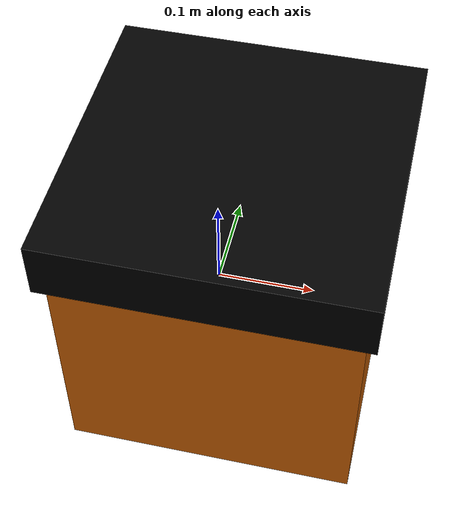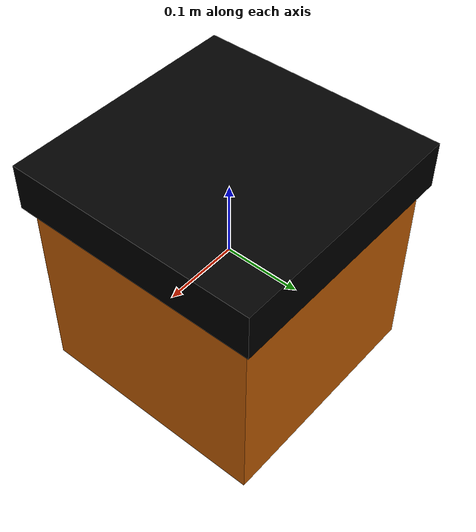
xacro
<?xml version="1.0"?>
<robot  name="box" xmlns:xacro="http://ros.org/wiki/xacro">

  <xacro:macro name="body_color">
    <visual>
      <material>
        <ambient>0.909803921568627 0.443137254901961 0.0313725490196078 1</ambient>
        <diffuse>0.909803921568627 0.443137254901961 0.0313725490196078 1</diffuse>
        <specular>0.1 0.1 0.1 1</specular>
        <emissive>0 0 0 0</emissive>
      </material>
    </visual>
  </xacro:macro>
  <xacro:macro name="lid_color">
    <visual>
      <material>
        <ambient>0 0 0 1</ambient>
        <diffuse>0 0 0  1</diffuse>
        <specular>0.1 0.1 0.1 1</specular>
        <emissive>0 0 0 0</emissive>
      </material>
    </visual>
  </xacro:macro>

  <link
    name="base_link">
    <inertial>
      <origin
        xyz="0.0182912425811423 0.00816214167781482 -0.0151972780093956"
        rpy="0 0 0" />
      <mass
        value="0.5" />
      <inertia
        ixx="0.405"
        ixy="0"
        ixz="0"
        iyy="0.405"
        iyz="0"
        izz="0.405" />
    </inertial>
    <visual>
      <origin
        xyz="0 0 0"
        rpy="0 0 0" />
      <geometry>
        <mesh
          filename="package://conveyor_belt/meshes/box/base_link.STL" />
      </geometry>
      <material
        name="">
        <color
          rgba="0.909803921568627 0.443137254901961 0.0313725490196078 1" />
      </material>
    </visual>
    <collision>
      <origin
        xyz="0 0 0"
        rpy="0 0 0" />
      <geometry>
        <mesh
          filename="package://conveyor_belt/meshes/box/base_link.STL" />
      </geometry>
    </collision>
  </link>
  <link
    name="lid_link">
    <inertial>
      <origin
        xyz="6.93889390390723E-18 0.0163138686131387 -8.67361737988404E-18"
        rpy="0 0 0" />
      <mass
        value="0.1" />
      <inertia
        ixx="0.0191640620437957"
        ixy="-2.42137678137086E-18"
        ixz="-1.26432854677493E-34"
        iyy="0.0373576000000001"
        iyz="1.0703877748923E-18"
        izz="0.0191640620437957" />
    </inertial>
    <visual>
      <origin
        xyz="0 0 0"
        rpy="0 0 0" />
      <geometry>
        <mesh
          filename="package://conveyor_belt/meshes/box/lid_link.STL" />
      </geometry>
      <material
        name="">
        <color
          rgba="0 0 0 1" />
      </material>
    </visual>
    <collision>
      <origin
        xyz="0 0 0"
        rpy="0 0 0" />
      <geometry>
        <mesh
          filename="package://conveyor_belt/meshes/box/lid_link.STL" />
      </geometry>
    </collision>
  </link>
  <joint
    name="lid_joint"
    type="fixed">
    <origin
      xyz="0.018291 0.015197 0.16816"
      rpy="-1.5708 0 3.1416" />
    <parent
      link="base_link" />
    <child
      link="lid_link" />
    <axis
      xyz="0 0 0" />
  </joint>

  <!-- Gazebo Colors -->
  <gazebo reference="base_link">
    <xacro:body_color />
  </gazebo>
  <gazebo reference="lid_link">
    <xacro:lid_color />
  </gazebo>

</robot>
